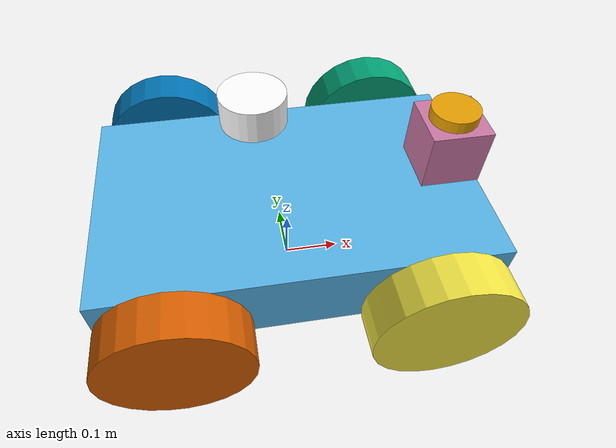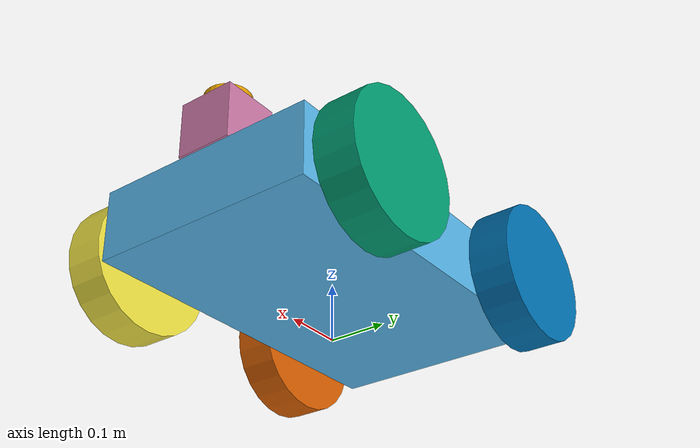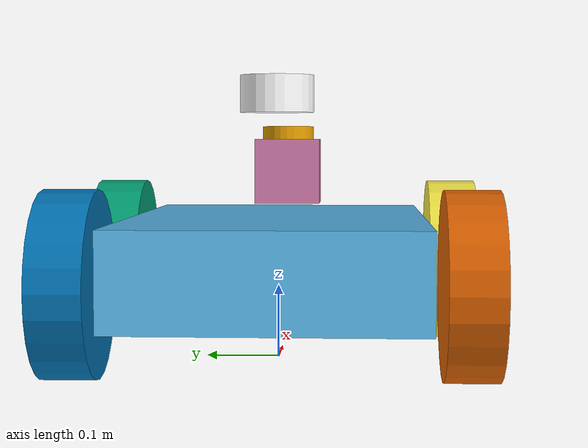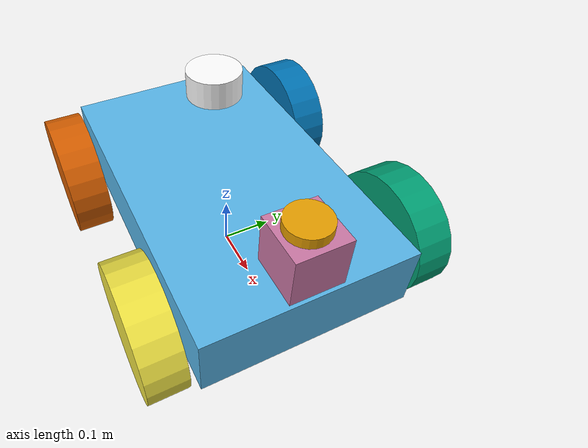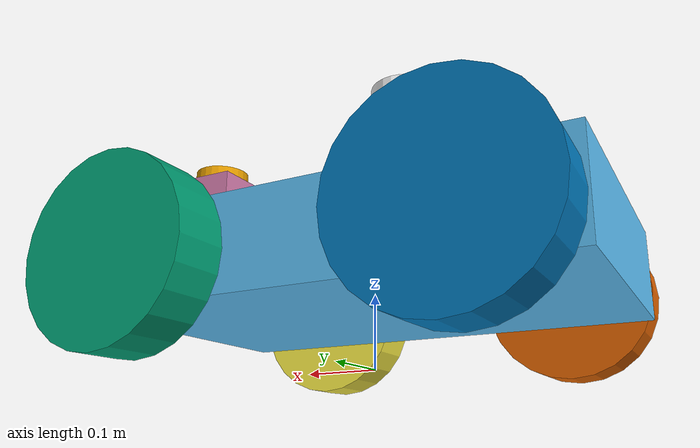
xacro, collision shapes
<?xml version='1.0'?>

<robot name="avular_origin_one" xmlns:xacro="http://ros.org/wiki/xacro" xmlns:ignition="http://sdformat.org/schemas/root.xsd">

  <xacro:arg name="drive_configuration" default="skid_steer_drive"/>

  <xacro:property name="var" value="$(arg drive_configuration)"/>
  <xacro:if value="${var == 'skid_steer_drive'}">
    <xacro:property name="trackWidth" value="0.500"/>
    <xacro:property name="wheelbase" value="0.410"/>
    <xacro:property name="wheelRadius" value="0.120"/>
    <xacro:property name="groundClearance" value="0.064"/>
    <!-- wheelMeshFileA refer to the mesh file used to visualize front left & rear right wheel  -->
    <xacro:property name="wheelMeshFileA" value="package://origin_one_description/urdf/meshes/wheel.obj"/>
    <!-- wheelMeshFileB refer to the mesh file used to visualize front right & rear left wheel  -->
    <xacro:property name="wheelMeshFileB" value="package://origin_one_description/urdf/meshes/wheel.obj"/>
  </xacro:if>
  <xacro:if value="${var == 'mecanum_drive'}">
    <xacro:property name="trackWidth" value="0.475"/>
    <xacro:property name="wheelbase" value="0.410"/>
    <xacro:property name="wheelRadius" value="0.1015"/>
    <xacro:property name="groundClearance" value="0.0455"/>
    <!-- wheelMeshFileA refer to the mesh file used to visualize front left & rear right wheel  -->
    <xacro:property name="wheelMeshFileA" value="package://origin_one_description/urdf/meshes/wheel_mecanumA.obj"/>
    <!-- wheelMeshFileB refer to the mesh file used to visualize front right & rear left wheel  -->
    <xacro:property name="wheelMeshFileB" value="package://origin_one_description/urdf/meshes/wheel_mecanumB.obj"/>
  </xacro:if>

  <gazebo>
    <static>false</static>
    <plugin filename="gz-sim-sensors-system" name="gz::sim::systems::Sensors">
      <render_engine>ogre2</render_engine>
    </plugin>
    <plugin filename="ignition-gazebo-navsat-system" name="ignition::gazebo::systems::NavSat">
    </plugin>
  </gazebo>

  <link name='base_link' />

  <link name='main_body'>
    <inertial>
      <mass value="21.0"/>
      <inertia ixx="0.4" ixy="0.0" ixz="0.0" iyy="0.77" iyz="0.0" izz="1.01"/>
    </inertial>
    <collision name='collision'>
      <origin xyz="0 0 0.07" rpy="0 0 0.0"/>
      <geometry>
        <box size=".65 .4 .125"/>
      </geometry>
    </collision>
    <visual name='visual'>
      <origin xyz="0 0 0" rpy="0 0 0.0"/>
      <geometry>
        <mesh filename="package://origin_one_description/urdf/meshes/body.obj"
          scale="0.001 0.001 0.001" />
      </geometry>
    </visual>
  </link>

  <link name="left_front_wheel">
    <inertial>
      <mass value="1"/>
      <inertia ixx="0.01" ixy="0.0" ixz="0.0" iyy="0.01" iyz="0.0" izz="0.01"/>
    </inertial>
    <collision>
      <origin xyz="0 0 0.0" rpy="0 0 0"/>
      <geometry>
        <cylinder length=".07" radius="${wheelRadius}"/>
      </geometry>
    </collision>
    <visual>
      <origin xyz="0.0 0.0 0.0" rpy="0.0 1.5707 0.0"/>
      <geometry>
        <mesh filename="${wheelMeshFileA}"
          scale="0.001 0.001 0.001" />
      </geometry>
    </visual>
  </link>
  <gazebo reference="left_front_wheel">
    <collision>
      <surface>
        <friction>
          <xacro:if value="${var == 'skid_steer_drive'}">
            <ode>
              <mu>1</mu>
              <mu2>1</mu2>
              <slip1>0.015</slip1>
              <slip2>0</slip2>
              <fdir1>0 0 1</fdir1>
            </ode>
          </xacro:if>
          <xacro:if value="${var == 'mecanum_drive'}">
            <ode>
              <mu>1</mu>
              <mu2>0</mu2>
              <fdir1 ignition:expressed_in="base_link">1 -1 0</fdir1>
            </ode>
          </xacro:if>
          <bullet>
            <friction>1</friction>
            <friction2>1</friction2>
            <rolling_friction>0.1</rolling_friction>
          </bullet>
        </friction>
      </surface>
    </collision>
  </gazebo>

  <link name="right_front_wheel">
    <inertial>
      <mass value="1"/>
      <inertia ixx="0.01" ixy="0.0" ixz="0.0" iyy="0.01" iyz="0.0" izz="0.01"/>
    </inertial>
    <collision>
      <origin xyz="0 0 0.0" rpy="0 0 0"/>
      <geometry>
        <cylinder length=".07" radius="${wheelRadius}"/>
      </geometry>
    </collision>
    <visual>
      <origin xyz="0.0 0.0 0.0" rpy="0.0 -1.5707 0.0"/>
      <geometry>
        <mesh filename="${wheelMeshFileB}"
          scale="0.001 0.001 0.001" />
      </geometry>
    </visual>
  </link>
  <gazebo reference="right_front_wheel">
    <collision>
      <surface>
        <friction>
          <xacro:if value="${var == 'skid_steer_drive'}">
            <ode>
              <mu>1</mu>
              <mu2>1</mu2>
              <slip1>0.015</slip1>
              <slip2>0</slip2>
              <fdir1>0 0 1</fdir1>
            </ode>
          </xacro:if>
          <xacro:if value="${var == 'mecanum_drive'}">
            <ode>
              <mu>1</mu>
              <mu2>0</mu2>
              <fdir1 ignition:expressed_in="base_link">1 1 0</fdir1>
            </ode>
          </xacro:if>
          <bullet>
            <friction>1</friction>
            <friction2>1</friction2>
            <rolling_friction>0.1</rolling_friction>
          </bullet>
        </friction>
      </surface>
    </collision>
  </gazebo>

  <link name="left_rear_wheel">
    <inertial>
      <mass value="1"/>
      <inertia ixx="0.01" ixy="0.0" ixz="0.0" iyy="0.01" iyz="0.0" izz="0.01"/>
    </inertial>
    <collision>
      <origin xyz="0 0 0.0" rpy="0 0 0"/>
      <geometry>
        <cylinder length=".07" radius="${wheelRadius}"/>
      </geometry>
    </collision>
    <visual>
      <origin xyz="0.0 0.0 0.0" rpy="0.0 1.5707 0.0"/>
      <geometry>
        <mesh filename="${wheelMeshFileB}"
          scale="0.001 0.001 0.001" />
      </geometry>
    </visual>
  </link>
  <gazebo reference="left_rear_wheel">
    <collision>
      <surface>
        <friction>
          <xacro:if value="${var == 'skid_steer_drive'}">
            <ode>
              <mu>1</mu>
              <mu2>1</mu2>
              <slip1>0.015</slip1>
              <slip2>0</slip2>
              <fdir1>0 0 1</fdir1>
            </ode>
          </xacro:if>
          <xacro:if value="${var == 'mecanum_drive'}">
            <ode>
              <mu>1</mu>
              <mu2>0</mu2>
              <fdir1 ignition:expressed_in="base_link">1 1 0</fdir1>
            </ode>
          </xacro:if>
          <bullet>
            <friction>1</friction>
            <friction2>1</friction2>
            <rolling_friction>0.1</rolling_friction>
          </bullet>
        </friction>
      </surface>
    </collision>
  </gazebo>

  <link name="right_rear_wheel">
    <inertial>
      <mass value="1"/>
      <inertia ixx="0.01" ixy="0.0" ixz="0.0" iyy="0.01" iyz="0.0" izz="0.01"/>
    </inertial>
    <collision>
      <origin xyz="0 0 0.0" rpy="0 0 0"/>
      <geometry>
        <cylinder length=".07" radius="${wheelRadius}"/>
      </geometry>
    </collision>
    <visual>
      <origin xyz="0.0 0.0 0.0" rpy="0.0 -1.5707 0.0"/>
      <geometry>
        <mesh filename="${wheelMeshFileA}"
          scale="0.001 0.001 0.001" />
      </geometry>
    </visual>
  </link>
  <gazebo reference="right_rear_wheel">
    <collision>
      <surface>
        <friction>
          <xacro:if value="${var == 'skid_steer_drive'}">
            <ode>
              <mu>1</mu>
              <mu2>1</mu2>
              <slip1>0.015</slip1>
              <slip2>0</slip2>
              <fdir1>0 0 1</fdir1>
            </ode>
          </xacro:if>
          <xacro:if value="${var == 'mecanum_drive'}">
            <ode>
              <mu>1</mu>
              <mu2>0</mu2>
              <fdir1 ignition:expressed_in="base_link">1 -1 0</fdir1>
            </ode>
          </xacro:if>
          <bullet>
            <friction>1</friction>
            <friction2>1</friction2>
            <rolling_friction>0.1</rolling_friction>
          </bullet>
        </friction>
      </surface>
    </collision>
  </gazebo>

  <link name="ouster_base">
    <inertial>
      <mass value="1"/>
      <inertia ixx="0.001" ixy="0.0" ixz="0.0" iyy="0.001" iyz="0.0" izz="0.001"/>
    </inertial>
    <visual name="visual">
      <geometry>
        <mesh filename="package://origin_one_description/urdf/meshes/ouster.obj"
          scale="0.001 0.001 0.001" />
      </geometry>
    </visual>
    <collision name="collision-base">
      <origin xyz="0.0 0.0 0.0" rpy="0.0 0.0 0.0"/>
      <geometry>
        <box size="0.1 0.1 0.1"/>
      </geometry>
    </collision>
  </link>

  <link name="os_sensor" />

  <link name="lidar_link_gazebo">
    <inertial>
      <mass value="0.1"/>
      <inertia ixx="0.001" ixy="0.0" ixz="0.0" iyy="0.001" iyz="0.0" izz="0.001"/>
    </inertial>
    <collision name="collision-base">
      <origin xyz="0 0 0.0" rpy="0 0 0"/>
      <geometry>
        <cylinder length="0.07" radius="0.04"/>
      </geometry>
    </collision>
  </link>

  <gazebo reference="lidar_link_gazebo">
    <sensor name='ouster_lidar' type='gpu_lidar'>
      <topic>/robot/lidar</topic>
      <gz_frame_id>os_lidar</gz_frame_id>
      <update_rate>10</update_rate>
      <lidar>
        <scan>
          <horizontal>
            <samples>1024</samples>
            <resolution>1.0</resolution>
            <min_angle>-3.1415926</min_angle>
            <max_angle>3.1415926</max_angle>
          </horizontal>
          <vertical>
            <samples>32</samples>
            <resolution>1</resolution>
            <min_angle>-0.39</min_angle>
            <max_angle>0.39</max_angle>
          </vertical>
        </scan>
        <range>
          <min>0.08</min>
          <max>100.0</max>
          <resolution>0.01</resolution>
        </range>
        <noise type="gaussian">
          <mean>0.0</mean>
          <stddev>0.01</stddev>
        </noise>
      </lidar>
      <alwaysOn>1</alwaysOn>
      <visualize>true</visualize>
    </sensor>
  </gazebo>

  <!-- 2D LiDAR for Nav2 (LaserScan) -->
  <link name="scan_link">
    <inertial>
      <mass value="0.05"/>
      <inertia ixx="0.0001" ixy="0.0" ixz="0.0" iyy="0.0001" iyz="0.0" izz="0.0001"/>
    </inertial>
    <visual name="visual">
      <origin xyz="0 0 0" rpy="0 0 0"/>
      <geometry>
        <cylinder length="0.05" radius="0.05"/>
      </geometry>
      <material name="black">
        <color rgba="1 1 1 1"/>
      </material>
    </visual>
    <collision name="collision">
      <origin xyz="0 0 0" rpy="0 0 0"/>
      <geometry>
        <cylinder length="0.05" radius="0.05"/>
      </geometry>
    </collision>
  </link>

  <gazebo reference="scan_link">
    <sensor name="2d_lidar" type="gpu_lidar">
      <topic>/scan</topic>
      <gz_frame_id>scan_link</gz_frame_id>
      <update_rate>10</update_rate>
      <lidar>
        <scan>
          <horizontal>
            <samples>360</samples>
            <resolution>1.0</resolution>
            <min_angle>-3.1415926</min_angle>
            <max_angle>3.1415926</max_angle>
          </horizontal>
        </scan>
        <range>
          <min>0.12</min>
          <max>30.0</max>
          <resolution>0.01</resolution>
        </range>
        <noise type="gaussian">
          <mean>0.0</mean>
          <stddev>0.01</stddev>
        </noise>
      </lidar>
      <alwaysOn>1</alwaysOn>
      <visualize>true</visualize>
    </sensor>
  </gazebo>

  <link name="camera_link">
    <inertial>
      <mass value="0.035"/>
      <inertia ixx="0.001" ixy="0" ixz="0.0" iyy="0.001" iyz="0.0" izz="0.001"/>
    </inertial>
    <collision name="collision">
      <origin xyz="0 0.047 0" rpy="0 0 0"/>
      <geometry>
        <box size="0.008 0.13 0.022"/>
      </geometry>
    </collision>
  </link>

  <gazebo reference="camera_link">
    <sensor name="realsense_d435" type="rgbd_camera">
      <gz_frame_id>camera_link</gz_frame_id>
      <topic>/robot/camera</topic>
      <update_rate>6</update_rate>
      <camera name="camera">
        <horizontal_fov>1.0472</horizontal_fov>
        <lens>
          <intrinsics>
            <!-- fx = fy = width / ( 2 * tan (hfov / 2 ) ) -->
            <fx>554.25469</fx>
            <fy>554.25469</fy>
            <!-- cx = ( width + 1 ) / 2 -->
            <cx>320.5</cx>
            <!-- cy = ( height + 1 ) / 2 -->
            <cy>240.5</cy>
            <s>0</s>
          </intrinsics>
        </lens>
        <distortion>
          <k1>0.0</k1>
          <k2>0.0</k2>
          <k3>0.0</k3>
          <p1>0.0</p1>
          <p2>0.0</p2>
          <center>0.5 0.5</center>
        </distortion>
        <image>
          <width>640</width>
          <height>480</height>
          <format>R8G8B8</format>
        </image>
        <clip>
          <near>0.02</near>
          <far>300</far>
        </clip>
        <depth_camera>
          <clip>
            <near>0.1</near>
            <far>10</far>
          </clip>
        </depth_camera>
        <noise type="gaussian">
          <mean>0</mean>
          <stddev>0.007</stddev>
        </noise>
      </camera>
    </sensor>
  </gazebo>

  <link name="gnss_link">
    <visual name="visual_pole">
      <geometry>
        <mesh filename="package://origin_one_description/urdf/meshes/antenna.obj"
          scale="0.001 0.001 0.001" />
      </geometry>
      <origin xyz="0.0 0 0.0" rpy="0 0 0"/>
      <geometry>
        <box size="0.03 0.03 0.1"/>
      </geometry>
    </visual>
  </link>

  <gazebo reference="gnss_link">
    <sensor name="navsat" type="navsat">
      <gz_frame_id>gnss_link</gz_frame_id>
      <always_on>1</always_on>
      <update_rate>10</update_rate>
      <topic>/robot/gnss</topic>
      <!-- Obtained from http://sdformat.org/spec?ver=1.11&elem=sensor#sensor_gps -->
      <gps>
        <position_sensing>
          <horizontal>
            <!-- Noise in degrees: https://github.com/gazebosim/gz-sensors/issues/325 -->
            <!-- Reduced noise for more precise GPS -->
            <noise type="gaussian">
              <mean>0.0</mean>
              <stddev>0.00001</stddev>
            </noise>
          </horizontal>
          <vertical>
            <!-- Noise in degrees -->
            <!-- Reduced noise for more precise GPS -->
            <noise type="gaussian">
              <mean>0.0</mean>
              <stddev>0.00001</stddev>
            </noise>
          </vertical>
        </position_sensing>
      </gps>
    </sensor>
  </gazebo>

  <link name="us_left_front_link">
  </link>

  <link name="us_center_front_link">
  </link>

  <link name="us_right_front_link">
  </link>

  <link name="us_left_rear_link">
  </link>

  <link name="us_center_rear_link">
  </link>

  <link name="us_right_rear_link">
  </link>

  <link name="imu_link">
    <inertial>
      <mass value="0.01"/>
      <inertia ixx="0.0001" ixy="0.0" ixz="0.0" iyy="0.0001" iyz="0.0" izz="0.0001"/>
    </inertial>
  </link>

  <gazebo reference="imu_link">
    <sensor name="GazeboIMU" type="imu">
      <always_on>1</always_on>
      <update_rate>25.0</update_rate>
      <visualize>true</visualize>
      <topic>imu</topic>
      <frame_id>imu_link</frame_id>
      <ignition_frame_id>imu_link</ignition_frame_id>
      <imu>
        <orientation_reference_frame>
          <localization>ENU</localization>
        </orientation_reference_frame>
      </imu>
      <plugin filename="ignition-gazebo-imu-system" name="ignition::gazebo::systems::Imu">
      </plugin>
    </sensor>
  </gazebo>

  <joint type="fixed" name="base_body">
    <origin xyz="0.0 0 ${groundClearance}" rpy="0 0 0"/>
    <child link="main_body" />
    <parent link="base_link"/>
  </joint>

  <joint type="continuous" name="main_body_left_front_wheel">
    <origin xyz="${wheelbase/2} ${trackWidth/2} 0.056" rpy="-1.5707 0 0"/>
    <child link="left_front_wheel" />
    <parent link="main_body"/>
    <axis xyz="0 0 1"/>
    <limit effort="100000.0" velocity="10"/>
  </joint>

  <joint type="continuous" name="main_body_right_front_wheel">
    <origin xyz="${wheelbase/2} ${-trackWidth/2} 0.056" rpy="-1.5707 0 0"/>
    <child link="right_front_wheel" />
    <parent link="main_body"/>
    <axis xyz="0 0 1"/>
    <limit effort="100000.0" velocity="10"/>
  </joint>

  <joint type="continuous" name="main_body_left_rear_wheel">
    <origin xyz="${-wheelbase/2} ${trackWidth/2} 0.056" rpy="-1.5707 0 0"/>
    <child link="left_rear_wheel" />
    <parent link="main_body"/>
    <axis xyz="0 0 1"/>
    <limit effort="100000.0" velocity="10"/>
  </joint>

  <joint type="continuous" name="main_body_right_rear_wheel">
    <origin xyz="${-wheelbase/2} ${-trackWidth/2} 0.056" rpy="-1.5707 0 0"/>
    <child link="right_rear_wheel" />
    <parent link="main_body"/>
    <axis xyz="0 0 1"/>
    <limit effort="100000.0" velocity="10"/>
  </joint>

  <joint type="fixed" name="ouster_platform_joint">
    <origin xyz="0.272 0 0.189" rpy="0 0 0"/>
    <child link="ouster_base" />
    <parent link="main_body"/>
  </joint>

  <joint name="ouster_orientation_joint" type="fixed">
    <parent link="ouster_base" />
    <child link="os_sensor" />
    <origin xyz="0 0 0" rpy="0 0 0" />
  </joint>

  <joint type="fixed" name="lidar_joint_gazebo">
    <origin xyz="0 0 0.035" rpy="0 0 0"/>
    <child link="lidar_link_gazebo" />
    <parent link="ouster_base"/>
  </joint>

  <joint type="fixed" name="realsense_joint">
    <origin xyz="0.3156 0.017 0.096" rpy="0 0 0"/>
    <child link="camera_link"/>
    <parent link="main_body"/>
  </joint>

  <joint type="fixed" name="gnss_joint">
    <origin xyz="-0.0505 0 0.212" rpy="0 0 0"/>
    <child link="gnss_link"/>
    <parent link="main_body"/>
  </joint>

  <joint type="fixed" name="scan_joint">
    <origin xyz="-0.05 0 0.3" rpy="0 0 0"/>
    <child link="scan_link"/>
    <parent link="main_body"/>
  </joint>

  <joint type="fixed" name="us_left_front_joint">
    <origin xyz="0.314 0.119 0.072" rpy="0 0 -0.7854"/>
    <child link="us_left_front_link"/>
    <parent link="main_body"/>
  </joint>

  <joint type="fixed" name="us_center_front_joint">
    <origin xyz="0.322 0 0.063" rpy="0 0 0"/>
    <child link="us_center_front_link"/>
    <parent link="main_body"/>
  </joint>

  <joint type="fixed" name="us_right_front_joint">
    <origin xyz="0.314 -0.119 0.072" rpy="0 0 0.7854"/>
    <child link="us_right_front_link"/>
    <parent link="main_body"/>
  </joint>

  <joint type="fixed" name="us_left_rear_joint">
    <origin xyz="-0.314 0.119 0.072" rpy="0 0 -2.357"/>
    <child link="us_left_rear_link"/>
    <parent link="main_body"/>
  </joint>

  <joint type="fixed" name="us_center_rear_joint">
    <origin xyz="-0.322 0 0.063" rpy="0 0 0"/>
    <child link="us_center_rear_link"/>
    <parent link="main_body"/>
  </joint>

  <joint type="fixed" name="us_right_rear_joint">
    <origin xyz="-0.314 -0.119 0.072" rpy="0 0 2.357"/>
    <child link="us_right_rear_link"/>
    <parent link="main_body"/>
  </joint>

  <joint type="fixed" name="imu_joint">
    <origin xyz="-0.1266 0.0749 0.066" rpy="0 0 2.357"/>
    <child link="imu_link"/>
    <parent link="main_body"/>
  </joint>

  <gazebo>
    <plugin filename="gz-sim-joint-state-publisher-system" name="ignition::gazebo::systems::JointStatePublisher">
      <topic>/robot/joint_states</topic>
    </plugin>
    <!-- Controls the differential drive robot -->
    <xacro:if value="${var == 'skid_steer_drive'}">
      <plugin filename="gz-sim-diff-drive-system" name="gz::sim::systems::DiffDrive">
        <left_joint>main_body_left_front_wheel</left_joint>
        <left_joint>main_body_left_rear_wheel</left_joint>
        <right_joint>main_body_right_front_wheel</right_joint>
        <right_joint>main_body_right_rear_wheel</right_joint>
        <wheel_separation>0.45</wheel_separation>
        <wheel_radius>0.120</wheel_radius>
        <max_linear_acceleration>5.5</max_linear_acceleration>
        <min_linear_acceleration>-5.5</min_linear_acceleration>
        <max_angular_acceleration>6</max_angular_acceleration>
        <min_angular_acceleration>-6</min_angular_acceleration>
        <max_linear_velocity>1.5</max_linear_velocity>
        <min_linear_velocity>-1.5</min_linear_velocity>
        <max_angular_velocity>2</max_angular_velocity>
        <min_angular_velocity>-2</min_angular_velocity>
        <topic>/robot/cmd_vel</topic>
        <odom_topic>/robot/odom</odom_topic>
        <tf_topic>/robot/tf</tf_topic>
        <frame_id>odom</frame_id>
        <child_frame_id>base_link</child_frame_id>
      </plugin>
    </xacro:if>

    <!-- Controls the mecanum drive robot -->
    <xacro:if value="${var == 'mecanum_drive'}">
      <plugin
        filename="gz-sim-mecanum-drive-system" name="ignition::gazebo::systems::MecanumDrive">
        <front_left_joint>main_body_left_front_wheel</front_left_joint>
        <front_right_joint>main_body_right_front_wheel</front_right_joint>
        <back_left_joint>main_body_left_rear_wheel</back_left_joint>
        <back_right_joint>main_body_right_rear_wheel</back_right_joint>
        <wheel_separation>${trackWidth}</wheel_separation>
        <wheelbase>${wheelbase}</wheelbase>
        <wheel_radius>${wheelRadius}</wheel_radius>
        <min_acceleration>-5</min_acceleration>
        <max_acceleration>5</max_acceleration>
        <topic>/robot/cmd_vel</topic>
      </plugin>

    <!-- Seperate plugin for odometry is used because mecanum drive plug does not have this feature-->
    <!-- see https://github.com/gazebosim/gz-sim/pull/2297 for more information -->
      <plugin
        filename="gz-sim-odometry-publisher-system" name="ignition::gazebo::systems::OdometryPublisher">
        <odom_topic>/robot/odom</odom_topic>
        <tf_topic>/robot/tf</tf_topic>
        <odom_frame>odom</odom_frame>
        <robot_base_frame>base_link</robot_base_frame>
      </plugin>

    </xacro:if>

  </gazebo>

</robot>
